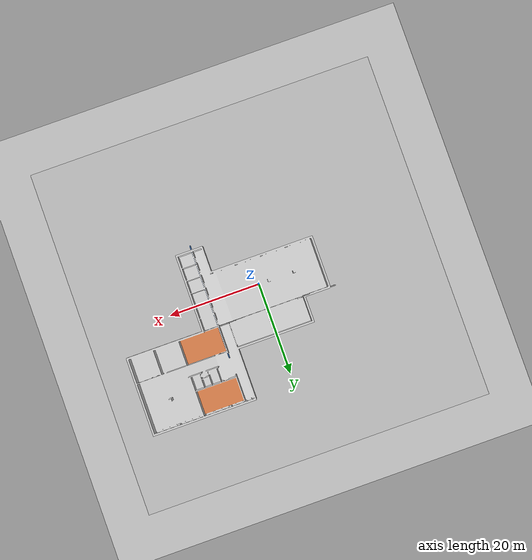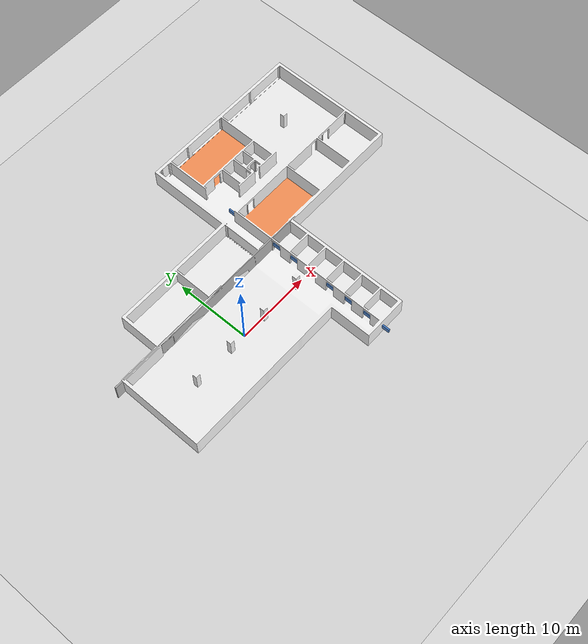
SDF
<sdf version="1.8">
 <world name="demo">
  <plugin filename="gz-sim-physics-system" name="gz::sim::systems::Physics"/>
  <plugin filename="gz-sim-sensors-system" name="gz::sim::systems::Sensors">
   <render_engine>ogre2</render_engine>
  </plugin>
  <plugin filename="gz-sim-imu-system" name="gz::sim::systems::Imu"/>
  <plugin filename="gz-sim-scene-broadcaster-system" name="gz::sim::systems::SceneBroadcaster"/>
  <plugin filename="gz-sim-user-commands-system" name="gz::sim::systems::UserCommands"/>
  <physics type="ode">
   <max_step_size>0.001</max_step_size>
   <real_time_factor>1</real_time_factor>
   <real_time_update_rate>1000</real_time_update_rate>
  </physics>
  <scene><ambient>0.4 0.4 0.4 1</ambient><background>0.7 0.7 0.7 1</background><shadows>true</shadows></scene>
  <light name="sun" type="directional">
   <pose>0 0 10 0 0 0</pose>
   <diffuse>0.8 0.8 0.8 1</diffuse>
   <specular>0.2 0.2 0.2 1</specular>
   <attenuation>
    <range>1000</range>
    <constant>0.9</constant>
    <linear>0.01</linear>
    <quadratic>0.001</quadratic>
   </attenuation>
   <direction>-0.5 0.1 -0.9</direction>
  </light>
  <model name="ground_plane">
   <static>true</static>
   <link name="link">
    <collision name="collision">
     <geometry><plane><normal>0 0 1</normal><size>100 100</size></plane></geometry>
    </collision>
    <visual name="visual">
     <cast_shadows>false</cast_shadows>
     <geometry><plane><normal>0 0 1</normal><size>100 100</size></plane></geometry>
     <material>
      <ambient>0.85 0.85 0.85 1</ambient>
      <diffuse>0.85 0.85 0.85 1</diffuse>
      <specular>0.1 0.1 0.1 1</specular>
     </material>
    </visual>
   </link>
  </model>
  <model name="ceiling">
   <static>true</static>
   <pose>0 0 2.5 0 0 0</pose>
   <link name="ceiling_link">
    <collision name="collision"><geometry><box><size>75 75 0.05</size></box></geometry></collision>
    <visual name="visual">
     <geometry><box><size>75 75 0.05</size></box></geometry>
     <material>
      <ambient>0.8 0.8 0.8 0.15</ambient>
      <diffuse>0.8 0.8 0.8 0.15</diffuse>
      <specular>0.1 0.1 0.1 0.15</specular>
     </material>
     <transparency>0.7</transparency>
     <cast_shadows>false</cast_shadows>
    </visual>
   </link>
  </model>
  <model name="CRTA_v4">
   <static>true</static>
   <pose>-13.5 -5.5 0 0 0 0</pose>
   <link name="link_0">
    <inertial>
     <mass>1</mass>
     <inertia>
      <ixx>0.166667</ixx>
      <ixy>0</ixy>
      <ixz>0</ixz>
      <iyy>0.166667</iyy>
      <iyz>0</iyz>
      <izz>0.166667</izz>
     </inertia>
    </inertial>
    <visual name="visual">
     <geometry><mesh><uri>model://CRTA_v4/meshes/CRTA_mesh.dae</uri><scale>1 1 1</scale></mesh></geometry>
    </visual>
    <collision name="collision">
     <geometry><mesh><uri>model://CRTA_v4/meshes/CRTA_mesh.dae</uri><scale>1 1 1</scale></mesh></geometry>
     <surface>
      <friction><ode><mu>1</mu><mu2>1</mu2></ode></friction>
      <contact><ode><kp>1e13</kp><kd>1</kd><max_vel>0.01</max_vel><min_depth>0</min_depth></ode></contact>
     </surface>
    </collision>
   </link>
  </model>
  <model name="corridor_block_wall">
   <static>true</static>
   <pose>0.0 5.5 1.25 0 0 0</pose>
   <link name="link">
    <collision name="collision"><geometry><box><size>30.0 0.2 2.5</size></box></geometry></collision>
    <visual name="visual">
     <geometry><box><size>30.0 0.2 2.5</size></box></geometry>
     <material><ambient>0.65 0.65 0.65 1</ambient><diffuse>0.65 0.65 0.65 1</diffuse></material>
    </visual>
   </link>
  </model>
  <model name="bypass_test_suspended_beam">
   <static>true</static>
   <pose>11.0 0.0 1.29 0 0 0</pose>
   <link name="link">
    <collision name="collision"><geometry><box><size>0.2 25.0 0.62</size></box></geometry></collision>
    <visual name="visual">
     <geometry><box><size>0.2 25.0 0.62</size></box></geometry>
     <material><ambient>0.15 0.45 0.85 1</ambient><diffuse>0.15 0.45 0.85 1</diffuse></material>
    </visual>
   </link>
  </model>
 </world>
</sdf>
